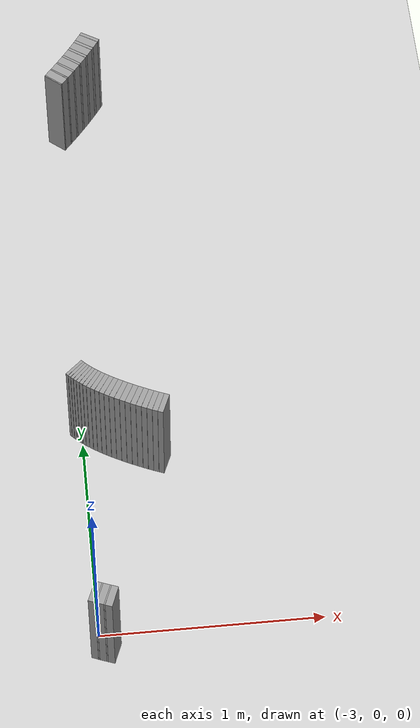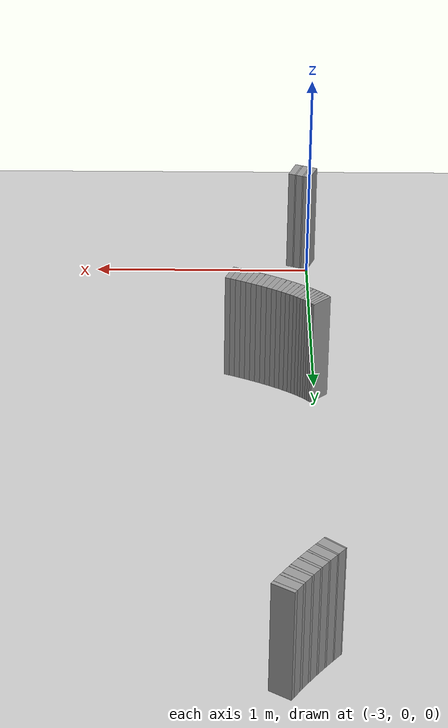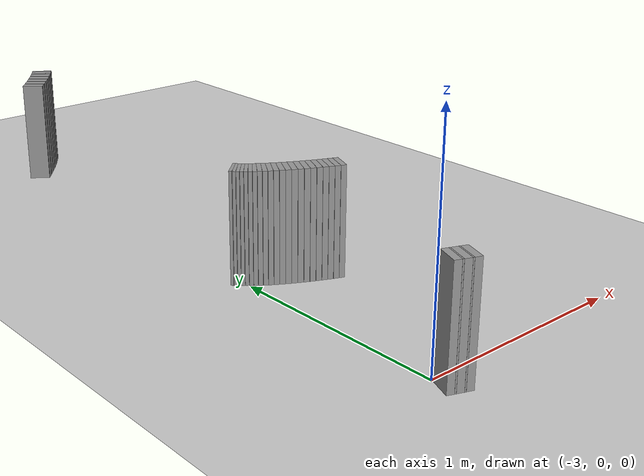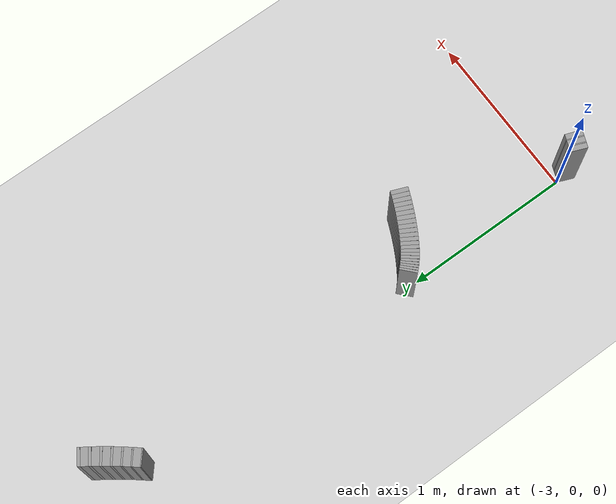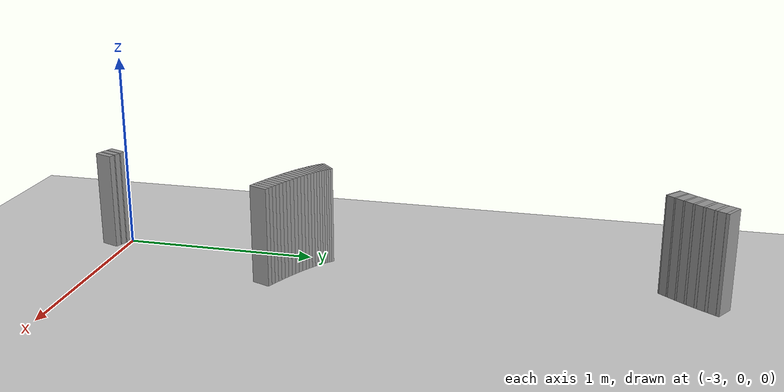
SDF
<sdf version="1.6">
 <world name="default">
  <include><uri>model://ground_plane</uri></include>
  <include><uri>model://sun</uri></include>
  <model name="wall_896_outward">
   <static>true</static>
   <link name="link">
    <collision name="collision">
     <geometry><box><size>0.016943904710441927 0.1 0.5</size></box></geometry>
    </collision>
    <visual name="visual">
     <geometry><box><size>0.016943904710441927 0.1 0.5</size></box></geometry>
     <material>
      <script><uri>file://media/materials/scripts/gazebo.material</uri><name>Gazebo/Gray</name></script>
     </material>
    </visual>
   </link>
   <pose>-2.805303757501017 3.0398885835928535 0.25 0 0 -2.1354688413356193</pose>
  </model>
  <model name="wall_897_outward">
   <static>true</static>
   <link name="link">
    <collision name="collision">
     <geometry><box><size>0.04176562493409461 0.1 0.5</size></box></geometry>
    </collision>
    <visual name="visual">
     <geometry><box><size>0.04176562493409461 0.1 0.5</size></box></geometry>
     <material>
      <script><uri>file://media/materials/scripts/gazebo.material</uri><name>Gazebo/Gray</name></script>
     </material>
    </visual>
   </link>
   <pose>-2.8213099466796896 3.0152826223311537 0.25 0 0 -2.152413556905105</pose>
  </model>
  <model name="wall_898_outward">
   <static>true</static>
   <link name="link">
    <collision name="collision">
     <geometry><box><size>0.015231598998731015 0.1 0.5</size></box></geometry>
    </collision>
    <visual name="visual">
     <geometry><box><size>0.015231598998731015 0.1 0.5</size></box></geometry>
     <material>
      <script><uri>file://media/materials/scripts/gazebo.material</uri><name>Gazebo/Gray</name></script>
     </material>
    </visual>
   </link>
   <pose>-2.837062841368537 2.991534353059107 0.25 0 0 -2.167645744924583</pose>
  </model>
  <model name="wall_899_outward">
   <static>true</static>
   <link name="link">
    <collision name="collision">
     <geometry><box><size>0.041977354943199464 0.1 0.5</size></box></geometry>
    </collision>
    <visual name="visual">
     <geometry><box><size>0.041977354943199464 0.1 0.5</size></box></geometry>
     <material>
      <script><uri>file://media/materials/scripts/gazebo.material</uri><name>Gazebo/Gray</name></script>
     </material>
    </visual>
   </link>
   <pose>-2.853402735488947 2.9680569836081165 0.25 0 0 -2.1828779329440464</pose>
  </model>
  <model name="wall_900_outward">
   <static>true</static>
   <link name="link">
    <collision name="collision">
     <geometry><box><size>0.013447822148404698 0.1 0.5</size></box></geometry>
    </collision>
    <visual name="visual">
     <geometry><box><size>0.013447822148404698 0.1 0.5</size></box></geometry>
     <material>
      <script><uri>file://media/materials/scripts/gazebo.material</uri><name>Gazebo/Gray</name></script>
     </material>
    </visual>
   </link>
   <pose>-2.8693992809012094 2.94542796295213 0.25 0 0 -2.1963261604515627</pose>
  </model>
  <model name="wall_901_outward">
   <static>true</static>
   <link name="link">
    <collision name="collision">
     <geometry><box><size>0.04212859726281697 0.1 0.5</size></box></geometry>
    </collision>
    <visual name="visual">
     <geometry><box><size>0.04212859726281697 0.1 0.5</size></box></geometry>
     <material>
      <script><uri>file://media/materials/scripts/gazebo.material</uri><name>Gazebo/Gray</name></script>
     </material>
    </visual>
   </link>
   <pose>-2.8858985417804943 2.923068773025185 0.25 0 0 -2.209774387959127</pose>
  </model>
  <model name="wall_902_outward">
   <static>true</static>
   <link name="link">
    <collision name="collision">
     <geometry><box><size>0.011609713407771572 0.1 0.5</size></box></geometry>
    </collision>
    <visual name="visual">
     <geometry><box><size>0.011609713407771572 0.1 0.5</size></box></geometry>
     <material>
      <script><uri>file://media/materials/scripts/gazebo.material</uri><name>Gazebo/Gray</name></script>
     </material>
    </visual>
   </link>
   <pose>-2.901976509236934 2.9015412559964044 0.25 0 0 -2.221384362186153</pose>
  </model>
  <model name="wall_903_outward">
   <static>true</static>
   <link name="link">
    <collision name="collision">
     <geometry><box><size>0.042207966790194035 0.1 0.5</size></box></geometry>
    </collision>
    <visual name="visual">
     <geometry><box><size>0.042207966790194035 0.1 0.5</size></box></geometry>
     <material>
      <script><uri>file://media/materials/scripts/gazebo.material</uri><name>Gazebo/Gray</name></script>
     </material>
    </visual>
   </link>
   <pose>-2.9184680681513884 2.8802786680185624 0.25 0 0 -2.2329943364131077</pose>
  </model>
  <model name="wall_904_outward">
   <static>true</static>
   <link name="link">
    <collision name="collision">
     <geometry><box><size>0.009712384671657697 0.1 0.5</size></box></geometry>
    </collision>
    <visual name="visual">
     <geometry><box><size>0.009712384671657697 0.1 0.5</size></box></geometry>
     <material>
      <script><uri>file://media/materials/scripts/gazebo.material</uri><name>Gazebo/Gray</name></script>
     </material>
    </visual>
   </link>
   <pose>-2.9344667840750764 2.85983454551128 0.25 0 0 -2.2427068737867946</pose>
  </model>
  <model name="wall_905_outward">
   <static>true</static>
   <link name="link">
    <collision name="collision">
     <geometry><box><size>0.042209851276654504 0.1 0.5</size></box></geometry>
    </collision>
    <visual name="visual">
     <geometry><box><size>0.042209851276654504 0.1 0.5</size></box></geometry>
     <material>
      <script><uri>file://media/materials/scripts/gazebo.material</uri><name>Gazebo/Gray</name></script>
     </material>
    </visual>
   </link>
   <pose>-2.950786926576059 2.8396448717372156 0.25 0 0 -2.2524194111604823</pose>
  </model>
  <model name="wall_906_outward">
   <static>true</static>
   <link name="link">
    <collision name="collision">
     <geometry><box><size>0.007792511541813882 0.1 0.5</size></box></geometry>
    </collision>
    <visual name="visual">
     <geometry><box><size>0.007792511541813882 0.1 0.5</size></box></geometry>
     <material>
      <script><uri>file://media/materials/scripts/gazebo.material</uri><name>Gazebo/Gray</name></script>
     </material>
    </visual>
   </link>
   <pose>-2.9665625302752985 2.820249397872857 0.25 0 0 -2.260212001568836</pose>
  </model>
  <model name="wall_907_outward">
   <static>true</static>
   <link name="link">
    <collision name="collision">
     <geometry><box><size>0.042130900015127405 0.1 0.5</size></box></geometry>
    </collision>
    <visual name="visual">
     <geometry><box><size>0.042130900015127405 0.1 0.5</size></box></geometry>
     <material>
      <script><uri>file://media/materials/scripts/gazebo.material</uri><name>Gazebo/Gray</name></script>
     </material>
    </visual>
   </link>
   <pose>-2.98256658858101 2.801093409537634 0.25 0 0 -2.2680045919772596</pose>
  </model>
  <model name="wall_908_outward">
   <static>true</static>
   <link name="link">
    <collision name="collision">
     <geometry><box><size>0.005842971535890487 0.1 0.5</size></box></geometry>
    </collision>
    <visual name="visual">
     <geometry><box><size>0.005842971535890487 0.1 0.5</size></box></geometry>
     <material>
      <script><uri>file://media/materials/scripts/gazebo.material</uri><name>Gazebo/Gray</name></script>
     </material>
    </visual>
   </link>
   <pose>-2.997981173542229 2.7827151191580484 0.25 0 0 -2.273847596760491</pose>
  </model>
  <model name="wall_979_outward">
   <static>true</static>
   <link name="link">
    <collision name="collision">
     <geometry><box><size>0.013228147459298359 0.1 0.5</size></box></geometry>
    </collision>
    <visual name="visual">
     <geometry><box><size>0.013228147459298359 0.1 0.5</size></box></geometry>
     <material>
      <script><uri>file://media/materials/scripts/gazebo.material</uri><name>Gazebo/Gray</name></script>
     </material>
    </visual>
   </link>
   <pose>-3.0127929227407373 1.092176892173458 0.25 0 0 -0.8323109407445071</pose>
  </model>
  <model name="wall_980_outward">
   <static>true</static>
   <link name="link">
    <collision name="collision">
     <geometry><box><size>0.013380789086450625 0.1 0.5</size></box></geometry>
    </collision>
    <visual name="visual">
     <geometry><box><size>0.013380789086450625 0.1 0.5</size></box></geometry>
     <material>
      <script><uri>file://media/materials/scripts/gazebo.material</uri><name>Gazebo/Gray</name></script>
     </material>
    </visual>
   </link>
   <pose>-3.003679999405647 1.082485776110707 0.25 0 0 -0.8001471901617211</pose>
  </model>
  <model name="wall_981_outward">
   <static>true</static>
   <link name="link">
    <collision name="collision">
     <geometry><box><size>0.013809344144187052 0.1 0.5</size></box></geometry>
    </collision>
    <visual name="visual">
     <geometry><box><size>0.013809344144187052 0.1 0.5</size></box></geometry>
     <material>
      <script><uri>file://media/materials/scripts/gazebo.material</uri><name>Gazebo/Gray</name></script>
     </material>
    </visual>
   </link>
   <pose>-2.9940516622905866 1.0728903375212135 0.25 0 0 -0.7677373188479165</pose>
  </model>
  <model name="wall_982_outward">
   <static>true</static>
   <link name="link">
    <collision name="collision">
     <geometry><box><size>0.014508151478140583 0.1 0.5</size></box></geometry>
    </collision>
    <visual name="visual">
     <geometry><box><size>0.014508151478140583 0.1 0.5</size></box></geometry>
     <material>
      <script><uri>file://media/materials/scripts/gazebo.material</uri><name>Gazebo/Gray</name></script>
     </material>
    </visual>
   </link>
   <pose>-2.983705118289833 1.0632276671612275 0.25 0 0 -0.7355247317042289</pose>
  </model>
  <model name="wall_983_outward">
   <static>true</static>
   <link name="link">
    <collision name="collision">
     <geometry><box><size>0.015454015617957026 0.1 0.5</size></box></geometry>
    </collision>
    <visual name="visual">
     <geometry><box><size>0.015454015617957026 0.1 0.5</size></box></geometry>
     <material>
      <script><uri>file://media/materials/scripts/gazebo.material</uri><name>Gazebo/Gray</name></script>
     </material>
    </visual>
   </link>
   <pose>-2.9724364253253146 1.0533588401876433 0.25 0 0 -0.7040066061001662</pose>
  </model>
  <model name="wall_984_outward">
   <static>true</static>
   <link name="link">
    <collision name="collision">
     <geometry><box><size>0.01659809785545942 0.1 0.5</size></box></geometry>
    </collision>
    <visual name="visual">
     <geometry><box><size>0.01659809785545942 0.1 0.5</size></box></geometry>
     <material>
      <script><uri>file://media/materials/scripts/gazebo.material</uri><name>Gazebo/Gray</name></script>
     </material>
    </visual>
   </link>
   <pose>-2.9600601367089237 1.0431802980294669 0.25 0 0 -0.6736078189582972</pose>
  </model>
  <model name="wall_985_outward">
   <static>true</static>
   <link name="link">
    <collision name="collision">
     <geometry><box><size>0.017878834142569633 0.1 0.5</size></box></geometry>
    </collision>
    <visual name="visual">
     <geometry><box><size>0.017878834142569633 0.1 0.5</size></box></geometry>
     <material>
      <script><uri>file://media/materials/scripts/gazebo.material</uri><name>Gazebo/Gray</name></script>
     </material>
    </visual>
   </link>
   <pose>-2.946428742093139 1.0326309932056859 0.25 0 0 -0.64470787376682</pose>
  </model>
  <model name="wall_986_outward">
   <static>true</static>
   <link name="link">
    <collision name="collision">
     <geometry><box><size>0.019219111111151904 0.1 0.5</size></box></geometry>
    </collision>
    <visual name="visual">
     <geometry><box><size>0.019219111111151904 0.1 0.5</size></box></geometry>
     <material>
      <script><uri>file://media/materials/scripts/gazebo.material</uri><name>Gazebo/Gray</name></script>
     </material>
    </visual>
   </link>
   <pose>-2.9314491312186792 1.021694248612521 0.25 0 0 -0.6175699877322414</pose>
  </model>
  <model name="wall_987_outward">
   <static>true</static>
   <link name="link">
    <collision name="collision">
     <geometry><box><size>0.020556886056562817 0.1 0.5</size></box></geometry>
    </collision>
    <visual name="visual">
     <geometry><box><size>0.020556886056562817 0.1 0.5</size></box></geometry>
     <material>
      <script><uri>file://media/materials/scripts/gazebo.material</uri><name>Gazebo/Gray</name></script>
     </material>
    </visual>
   </link>
   <pose>-2.915087236333955 1.0103912383310438 0.25 0 0 -0.5923455614213026</pose>
  </model>
  <model name="wall_988_outward">
   <static>true</static>
   <link name="link">
    <collision name="collision">
     <geometry><box><size>0.021813675375407498 0.1 0.5</size></box></geometry>
    </collision>
    <visual name="visual">
     <geometry><box><size>0.021813675375407498 0.1 0.5</size></box></geometry>
     <material>
      <script><uri>file://media/materials/scripts/gazebo.material</uri><name>Gazebo/Gray</name></script>
     </material>
    </visual>
   </link>
   <pose>-2.897372342560491 0.9987749447942069 0.25 0 0 -0.5691368688488051</pose>
  </model>
  <model name="wall_989_outward">
   <static>true</static>
   <link name="link">
    <collision name="collision">
     <geometry><box><size>0.022924174390543343 0.1 0.5</size></box></geometry>
    </collision>
    <visual name="visual">
     <geometry><box><size>0.022924174390543343 0.1 0.5</size></box></geometry>
     <material>
      <script><uri>file://media/materials/scripts/gazebo.material</uri><name>Gazebo/Gray</name></script>
     </material>
    </visual>
   </link>
   <pose>-2.8784002100668693 0.9869271460870278 0.25 0 0 -0.5478483472339637</pose>
  </model>
  <model name="wall_990_outward">
   <static>true</static>
   <link name="link">
    <collision name="collision">
     <geometry><box><size>0.023859584007669264 0.1 0.5</size></box></geometry>
    </collision>
    <visual name="visual">
     <geometry><box><size>0.023859584007669264 0.1 0.5</size></box></geometry>
     <material>
      <script><uri>file://media/materials/scripts/gazebo.material</uri><name>Gazebo/Gray</name></script>
     </material>
    </visual>
   </link>
   <pose>-2.8583126888100483 0.974943006210699 0.25 0 0 -0.5283671486189514</pose>
  </model>
  <model name="wall_991_outward">
   <static>true</static>
   <link name="link">
    <collision name="collision">
     <geometry><box><size>0.024585555274335057 0.1 0.5</size></box></geometry>
    </collision>
    <visual name="visual">
     <geometry><box><size>0.024585555274335057 0.1 0.5</size></box></geometry>
     <material>
      <script><uri>file://media/materials/scripts/gazebo.material</uri><name>Gazebo/Gray</name></script>
     </material>
    </visual>
   </link>
   <pose>-2.837284352294093 0.9629223914273055 0.25 0 0 -0.5105097433026748</pose>
  </model>
  <model name="wall_992_outward">
   <static>true</static>
   <link name="link">
    <collision name="collision">
     <geometry><box><size>0.02508881602500727 0.1 0.5</size></box></geometry>
    </collision>
    <visual name="visual">
     <geometry><box><size>0.02508881602500727 0.1 0.5</size></box></geometry>
     <material>
      <script><uri>file://media/materials/scripts/gazebo.material</uri><name>Gazebo/Gray</name></script>
     </material>
    </visual>
   </link>
   <pose>-2.8155144172400353 0.9509677365981078 0.25 0 0 -0.49401659814927074</pose>
  </model>
  <model name="wall_993_outward">
   <static>true</static>
   <link name="link">
    <collision name="collision">
     <geometry><box><size>0.025375508294859694 0.1 0.5</size></box></geometry>
    </collision>
    <visual name="visual">
     <geometry><box><size>0.025375508294859694 0.1 0.5</size></box></geometry>
     <material>
      <script><uri>file://media/materials/scripts/gazebo.material</uri><name>Gazebo/Gray</name></script>
     </material>
    </visual>
   </link>
   <pose>-2.7932078564084533 0.9391761444221921 0.25 0 0 -0.4786248903839268</pose>
  </model>
  <model name="wall_994_outward">
   <static>true</static>
   <link name="link">
    <collision name="collision">
     <geometry><box><size>0.02547264117778463 0.1 0.5</size></box></geometry>
    </collision>
    <visual name="visual">
     <geometry><box><size>0.02547264117778463 0.1 0.5</size></box></geometry>
     <material>
      <script><uri>file://media/materials/scripts/gazebo.material</uri><name>Gazebo/Gray</name></script>
     </material>
    </visual>
   </link>
   <pose>-2.7705563638904245 0.9276323542616767 0.25 0 0 -0.464040456750322</pose>
  </model>
  <model name="wall_995_outward">
   <static>true</static>
   <link name="link">
    <collision name="collision">
     <geometry><box><size>0.02541666194183688 0.1 0.5</size></box></geometry>
    </collision>
    <visual name="visual">
     <geometry><box><size>0.02541666194183688 0.1 0.5</size></box></geometry>
     <material>
      <script><uri>file://media/materials/scripts/gazebo.material</uri><name>Gazebo/Gray</name></script>
     </material>
    </visual>
   </link>
   <pose>-2.747723849367297 0.9164040516306622 0.25 0 0 -0.45002500806157075</pose>
  </model>
  <model name="wall_996_outward">
   <static>true</static>
   <link name="link">
    <collision name="collision">
     <geometry><box><size>0.025252812813024262 0.1 0.5</size></box></geometry>
    </collision>
    <visual name="visual">
     <geometry><box><size>0.025252812813024262 0.1 0.5</size></box></geometry>
     <material>
      <script><uri>file://media/materials/scripts/gazebo.material</uri><name>Gazebo/Gray</name></script>
     </material>
    </visual>
   </link>
   <pose>-2.724837442967818 0.9055398317607048 0.25 0 0 -0.43634085976500636</pose>
  </model>
  <model name="wall_997_outward">
   <static>true</static>
   <link name="link">
    <collision name="collision">
     <geometry><box><size>0.025052613990265513 0.1 0.5</size></box></geometry>
    </collision>
    <visual name="visual">
     <geometry><box><size>0.025052613990265513 0.1 0.5</size></box></geometry>
     <material>
      <script><uri>file://media/materials/scripts/gazebo.material</uri><name>Gazebo/Gray</name></script>
     </material>
    </visual>
   </link>
   <pose>-2.701970928425794 0.8950635433824274 0.25 0 0 -0.42282650082941053</pose>
  </model>
  <model name="wall_998_outward">
   <static>true</static>
   <link name="link">
    <collision name="collision">
     <geometry><box><size>0.024880577912180176 0.1 0.5</size></box></geometry>
    </collision>
    <visual name="visual">
     <geometry><box><size>0.024880577912180176 0.1 0.5</size></box></geometry>
     <material>
      <script><uri>file://media/materials/scripts/gazebo.material</uri><name>Gazebo/Gray</name></script>
     </material>
    </visual>
   </link>
   <pose>-2.6791357263844464 0.8849711446421227 0.25 0 0 -0.40943411401649016</pose>
  </model>
  <model name="wall_999_outward">
   <static>true</static>
   <link name="link">
    <collision name="collision">
     <geometry><box><size>0.024784712344011462 0.1 0.5</size></box></geometry>
    </collision>
    <visual name="visual">
     <geometry><box><size>0.024784712344011462 0.1 0.5</size></box></geometry>
     <material>
      <script><uri>file://media/materials/scripts/gazebo.material</uri><name>Gazebo/Gray</name></script>
     </material>
    </visual>
   </link>
   <pose>-2.6562911623255654 0.8752367192858821 0.25 0 0 -0.3961706837096499</pose>
  </model>
  <model name="wall_1000_outward">
   <static>true</static>
   <link name="link">
    <collision name="collision">
     <geometry><box><size>0.02481836743720077 0.1 0.5</size></box></geometry>
    </collision>
    <visual name="visual">
     <geometry><box><size>0.02481836743720077 0.1 0.5</size></box></geometry>
     <material>
      <script><uri>file://media/materials/scripts/gazebo.material</uri><name>Gazebo/Gray</name></script>
     </material>
    </visual>
   </link>
   <pose>-2.633349049176916 0.8658160190913519 0.25 0 0 -0.3831096048675969</pose>
  </model>
  <model name="wall_737_inward">
   <static>true</static>
   <link name="link">
    <collision name="collision">
     <geometry><box><size>0.03125601276942247 0.1 0.5</size></box></geometry>
    </collision>
    <visual name="visual">
     <geometry><box><size>0.03125601276942247 0.1 0.5</size></box></geometry>
     <material>
      <script><uri>file://media/materials/scripts/gazebo.material</uri><name>Gazebo/Gray</name></script>
     </material>
    </visual>
   </link>
   <pose>-3.007198623675403 -0.0616733327660923 0.25 0 0 -0.3831096048675957</pose>
  </model>
  <model name="wall_738_inward">
   <static>true</static>
   <link name="link">
    <collision name="collision">
     <geometry><box><size>0.006344530706507869 0.1 0.5</size></box></geometry>
    </collision>
    <visual name="visual">
     <geometry><box><size>0.006344530706507869 0.1 0.5</size></box></geometry>
     <material>
      <script><uri>file://media/materials/scripts/gazebo.material</uri><name>Gazebo/Gray</name></script>
     </material>
    </visual>
   </link>
   <pose>-2.9897537808762626 -0.06868230426845742 0.25 0 0 -0.3767650315958595</pose>
  </model>
  <model name="wall_739_inward">
   <static>true</static>
   <link name="link">
    <collision name="collision">
     <geometry><box><size>0.031222267742563856 0.1 0.5</size></box></geometry>
    </collision>
    <visual name="visual">
     <geometry><box><size>0.031222267742563856 0.1 0.5</size></box></geometry>
     <material>
      <script><uri>file://media/materials/scripts/gazebo.material</uri><name>Gazebo/Gray</name></script>
     </material>
    </visual>
   </link>
   <pose>-2.9722517070625214 -0.07550077221862928 0.25 0 0 -0.3704204583240917</pose>
  </model>
  <model name="wall_740_inward">
   <static>true</static>
   <link name="link">
    <collision name="collision">
     <geometry><box><size>0.006074528388206159 0.1 0.5</size></box></geometry>
    </collision>
    <visual name="visual">
     <geometry><box><size>0.006074528388206159 0.1 0.5</size></box></geometry>
     <material>
      <script><uri>file://media/materials/scripts/gazebo.material</uri><name>Gazebo/Gray</name></script>
     </material>
    </visual>
   </link>
   <pose>-2.9548615057317598 -0.08223441153558658 0.25 0 0 -0.36434589257701716</pose>
  </model>
  <model name="wall_741_inward">
   <static>true</static>
   <link name="link">
    <collision name="collision">
     <geometry><box><size>0.03126497714750888 0.1 0.5</size></box></geometry>
    </collision>
    <visual name="visual">
     <geometry><box><size>0.03126497714750888 0.1 0.5</size></box></geometry>
     <material>
      <script><uri>file://media/materials/scripts/gazebo.material</uri><name>Gazebo/Gray</name></script>
     </material>
    </visual>
   </link>
   <pose>-2.9373837223285566 -0.088798328331261 0.25 0 0 -0.35827132682995216</pose>
  </model>
 </world>
</sdf>
